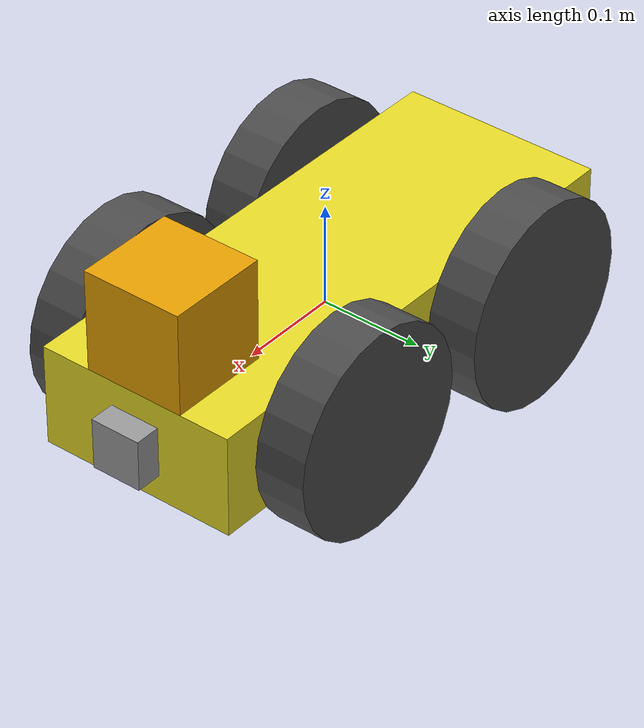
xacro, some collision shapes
<?xml version='1.0'?>

<robot name="my_robot" xmlns:xacro="http://www.ros.org/wiki/xacro">

  <xacro:include filename="$(find my_robot)/urdf/my_robot.gazebo" />

  <link name="robot_footprint"></link>

  <joint name="robot_footprint_joint" type="fixed">
    <origin xyz="0 0 0" rpy="0 0 0" />
    <parent link="robot_footprint"/>
    <child link="chassis" />
  </joint>

  <link name='chassis'>

    <origin xyz="0 0 0" rpy=" 0 0 0"/>
    <pose>0 0 0.1 0 0 0</pose>

    <inertial>
      <mass value="15.0"/>
      <inertia
              ixx="0.1" ixy="0" ixz="0"
              iyy="0.1" iyz="0"
              izz="0.1"
      />
    </inertial>

    <collision name='chassis collision'>
      <geometry>
        <box size=".5 .2 .1"/>
      </geometry>
    </collision>

    <visual name='chassis_visual'>
      <geometry>
        <box size=".5 .2 .1"/>
      </geometry>
    </visual>

    <collision name='caster_collision_rear'>
      <origin xyz="-0.15 0 -0.05" rpy=" 0 0 0"/>
      <geometry>
        <sphere radius="0.0499"/>
      </geometry>
    </collision>

    <visual name='caster_visual_rear'>
      <origin xyz="-0.15 0 -0.05" rpy=" 0 0 0"/>
      <geometry>
        <sphere radius="0.05"/>
      </geometry>
    </visual>

    <collision name='caster_collision_front'>
      <origin xyz="0.15 0 -0.05" rpy=" 0 0 0"/>
      <geometry>
        <sphere radius="0.0499"/>
      </geometry>
    </collision>

    <visual name='caster_visual_front'>
      <origin xyz="0.15 0 -0.05" rpy=" 0 0 0"/>
      <geometry>
        <sphere radius="0.05"/>
      </geometry>
    </visual>

  </link>

  <link name="wheel_front_left">
    <inertial>
      <origin xyz="0 0 0" rpy="0 1.5707 1.5707"/>
      <mass value="5"/>
      <inertia
              ixx="0.1" ixy="0" ixz="0"
              iyy="0.1" iyz="0" izz="0.1"
      />
    </inertial>
    <collision>
      <origin xyz="0 0 0" rpy="0 1.5707 1.5707"/>
      <geometry>
        <cylinder radius="0.1" length="0.05"/>
      </geometry>
    </collision>
    <visual>
      <origin xyz="0 0 0" rpy="0 1.5707 1.5707"/>
      <geometry>
        <cylinder radius="0.1" length="0.05"/>
      </geometry>
    </visual>
  </link>

  <link name="wheel_front_right">
    <inertial>
      <origin xyz="0 0 0" rpy="0 1.5707 1.5707"/>
      <mass value="5"/>
      <inertia
              ixx="0.1" ixy="0" ixz="0"
              iyy="0.1" iyz="0" izz="0.1"
      />
    </inertial>
    <collision>
      <origin xyz="0 0 0" rpy="0 1.5707 1.5707"/>
      <geometry>
        <cylinder radius="0.1" length="0.05"/>
      </geometry>
    </collision>
    <visual>
      <origin xyz="0 0 0" rpy="0 1.5707 1.5707"/>
      <geometry>
        <cylinder radius="0.1" length="0.05"/>
      </geometry>
    </visual>
  </link>

  <link name="wheel_back_left">
    <inertial>
      <origin xyz="0 0 0" rpy="0 1.5707 1.5707"/>
      <mass value="5"/>
      <inertia
              ixx="0.1" ixy="0" ixz="0"
              iyy="0.1" iyz="0" izz="0.1"
      />
    </inertial>
    <collision>
      <origin xyz="0 0 0" rpy="0 1.5707 1.5707"/>
      <geometry>
        <cylinder radius="0.1" length="0.05"/>
      </geometry>
    </collision>
    <visual>
      <origin xyz="0 0 0" rpy="0 1.5707 1.5707"/>
      <geometry>
        <cylinder radius="0.1" length="0.05"/>
      </geometry>
    </visual>
  </link>

  <link name="wheel_back_right">
    <inertial>
      <origin xyz="0 0 0" rpy="0 1.5707 1.5707"/>
      <mass value="5"/>
      <inertia
              ixx="0.1" ixy="0" ixz="0"
              iyy="0.1" iyz="0" izz="0.1"
      />
    </inertial>
    <collision>
      <origin xyz="0 0 0" rpy="0 1.5707 1.5707"/>
      <geometry>
        <cylinder radius="0.1" length="0.05"/>
      </geometry>
    </collision>
    <visual>
      <origin xyz="0 0 0" rpy="0 1.5707 1.5707"/>
      <geometry>
        <cylinder radius="0.1" length="0.05"/>
      </geometry>
    </visual>
  </link>

  <joint name="wheel_front_left_hinge" type="continuous">
    <origin xyz="0.115 0.125 0" rpy="0 0 0"/>
    <child link="wheel_front_left"/>
    <parent link="chassis"/>
    <axis xyz="0 1 0" rpy="0 0 0"/>
    <limit effort="10000" velocity="1000"/>
    <dynamics damping="1.0" friction="1.0"/>
  </joint>

  <joint name="wheel_front_right_hinge" type="continuous">
    <origin xyz="0.115 -0.125 0" rpy="0 0 0"/>
    <child link="wheel_front_right"/>
    <parent link="chassis"/>
    <axis xyz="0 1 0" rpy="0 0 0"/>
    <limit effort="10000" velocity="1000"/>
    <dynamics damping="1.0" friction="1.0"/>
  </joint>

  <joint name="wheel_back_left_hinge" type="continuous">
    <origin xyz="-0.115 0.125 0" rpy="0 0 0"/>
    <child link="wheel_back_left"/>
    <parent link="chassis"/>
    <axis xyz="0 1 0" rpy="0 0 0"/>
    <limit effort="10000" velocity="1000"/>
    <dynamics damping="1.0" friction="1.0"/>
  </joint>

  <joint name="wheel_back_right_hinge" type="continuous">
    <origin xyz="-0.115 -0.125 0" rpy="0 0 0"/>
    <child link="wheel_back_right"/>
    <parent link="chassis"/>
    <axis xyz="0 1 0" rpy="0 0 0"/>
    <limit effort="10000" velocity="1000"/>
    <dynamics damping="1.0" friction="1.0"/>
  </joint>

  <link name="camera">

    <origin xyz="0 0 0" rpy="0 0 0" />

    <inertial>
      <mass value="0.1"/>
      <inertia
              ixx="1e-6" ixy="0" ixz="0"
              iyy="1e-6" iyz="0" izz="1e-6"
      />
    </inertial>

    <collision>
      <geometry>
        <box size="0.05 0.05 0.05"/>
      </geometry>
    </collision>

    <visual>
      <geometry>
        <box size="0.05 0.05 0.05"/>
      </geometry>
    </visual>
  </link>

  <joint name="camera_joint" type="fixed">
    <axis xyz="0 1 0"/>
    <origin xyz="0.25 0 0" rpy="0 0 0" />
    <parent link="chassis"/>
    <child link="camera" />
  </joint>

  <joint name="camera_optical_joint" type="fixed">
    <origin xyz="0 0 0" rpy="-1.5707 0 -1.5707"/>
    <parent link="camera"/>
    <child link="camera_link_optical"/>
  </joint>

  <link name="camera_link_optical"> </link>

  <link name="hokuyo">
    <origin xyz="0 0 0" rpy="0 0 0" />

    <inertial>
      <mass value="1e-5"/>
      <inertia
              ixx="1e-6" ixy="0" ixz="0"
              iyy="1e-6" iyz="0" izz="1e-6"
      />
    </inertial>

    <collision>
      <geometry>
        <box size=".1 .1 .1"/>
      </geometry>
    </collision>

    <visual>
      <geometry>
        <mesh filename="package://my_robot/meshes/hokuyo.dae"/>
      </geometry>
    </visual>
  </link>

  <joint name="hokuyo_joint" type="fixed">
    <axis xyz="0 1 0"/>
    <origin xyz="0.2 0 0.1" rpy="0 0 0" />
    <parent link="chassis"/>
    <child link="hokuyo" />
  </joint>

  <gazebo reference="chassis">
    <material>Gazebo/DarkYellow</material>
  </gazebo>

  <gazebo reference="wheel_front_left">
    <material>Gazebo/DarkGrey</material>
  </gazebo>

  <gazebo reference="wheel_front_right">
    <material>Gazebo/DarkGrey</material>
  </gazebo>

  <gazebo reference="wheel_back_left">
    <material>Gazebo/DarkGrey</material>
  </gazebo>

  <gazebo reference="wheel_back_right">
    <material>Gazebo/DarkGrey</material>
  </gazebo>

  <gazebo reference="camera">
    <material>Gazebo/Grey</material>
  </gazebo>

  </robot>
